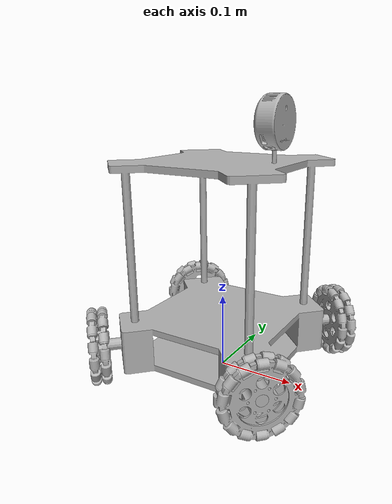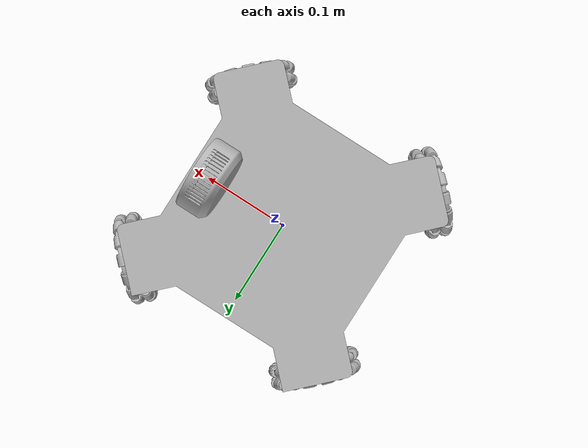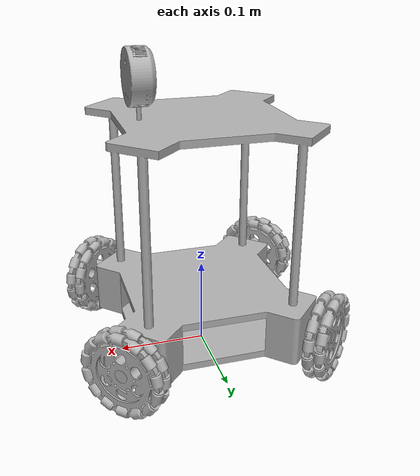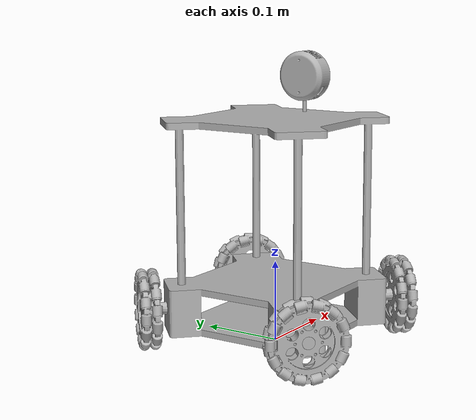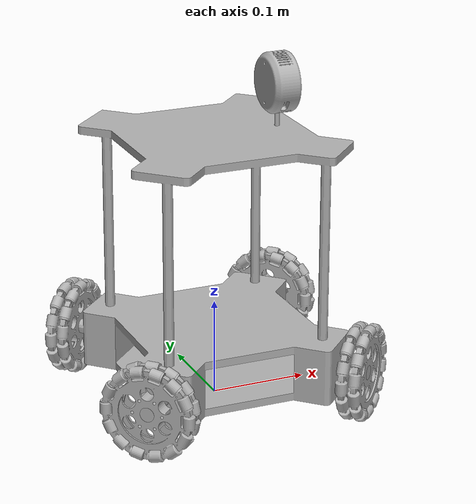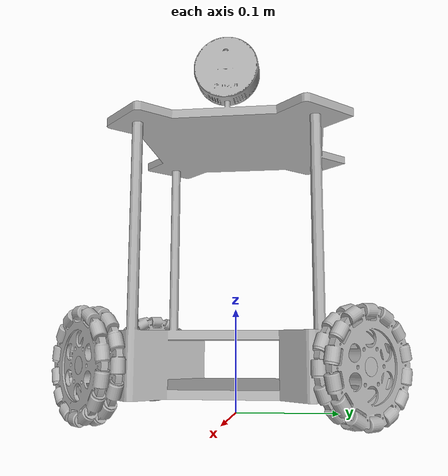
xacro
<?xml version="1.0" ?>
<robot name="rosbot2" xmlns:xacro="http://www.ros.org/wiki/xacro">

<xacro:include filename="$(find rosbot2_description)/urdf/materials.xacro" />
<xacro:include filename="$(find rosbot2_description)/urdf/rosbot2.trans" />
<xacro:include filename="$(find rosbot2_description)/urdf/rosbot2.gazebo" />
<xacro:include filename="$(find rosbot2_description)/urdf/gazebo_plugins.xacro" />
<xacro:include filename="$(find rosbot2_description)/urdf/lidar.xacro" />

<link name="base_link">
  <inertial>
    <origin xyz="4.279328882950714e-05 2.9051439187655854e-05 0.10428263442590485" rpy="0 0 0"/>
    <mass value="1.4518464481591138"/>
    <inertia ixx="0.020264" iyy="0.020266" izz="0.013558" ixy="-2.6e-05" iyz="-7e-06" ixz="-1.1e-05"/>
  </inertial>
  <visual>
    <origin xyz="0 0 0" rpy="0 0 0"/>
    <geometry>
      <mesh filename="file://$(find rosbot2_description)/meshes/base_link.stl" scale="0.001 0.001 0.001"/>
    </geometry>
    <material name="silver"/>
  </visual>
  <collision>
    <origin xyz="0 0 0" rpy="0 0 0"/>
    <geometry>
      <mesh filename="file://$(find rosbot2_description)/meshes/base_link.stl" scale="0.001 0.001 0.001"/>
    </geometry>
  </collision>
</link>

<link name="lw_wheel_1">
  <inertial>
    <origin xyz="-0.005332559043823348 -0.005301027638289532 2.5915426843534095e-05" rpy="0 0 0"/>
    <mass value="0.07153770183519433"/>
    <inertia ixx="7.9e-05" iyy="7.9e-05" izz="5.4e-05" ixy="2.4e-05" iyz="-0.0" ixz="0.0"/>
  </inertial>
  <visual>
    <origin xyz="-0.120208 -0.120208 -0.049" rpy="0 0 0"/>
    <geometry>
      <mesh filename="file://$(find rosbot2_description)/meshes/lw_wheel_1.stl" scale="0.001 0.001 0.001"/>
    </geometry>
    <material name="silver"/>
  </visual>
  <collision>
    <origin xyz="-0.120208 -0.120208 -0.049" rpy="0 0 0"/>
    <geometry>
      <mesh filename="file://$(find rosbot2_description)/meshes/lw_wheel_1.stl" scale="0.001 0.001 0.001"/>
    </geometry>
  </collision>
</link>

<link name="lb_wheel_1">
  <inertial>
    <origin xyz="0.0053411577210747685 -0.005309626315541993 2.5915426843658995e-05" rpy="0 0 0"/>
    <mass value="0.071537701835195"/>
    <inertia ixx="7.9e-05" iyy="7.9e-05" izz="5.4e-05" ixy="-2.4e-05" iyz="-0.0" ixz="-0.0"/>
  </inertial>
  <visual>
    <origin xyz="0.116673 -0.116673 -0.049" rpy="0 0 0"/>
    <geometry>
      <mesh filename="file://$(find rosbot2_description)/meshes/lb_wheel_1.stl" scale="0.001 0.001 0.001"/>
    </geometry>
    <material name="silver"/>
  </visual>
  <collision>
    <origin xyz="0.116673 -0.116673 -0.049" rpy="0 0 0"/>
    <geometry>
      <mesh filename="file://$(find rosbot2_description)/meshes/lb_wheel_1.stl" scale="0.001 0.001 0.001"/>
    </geometry>
  </collision>
</link>

<link name="rw_wheel_1">
  <inertial>
    <origin xyz="-0.005301561544221747 0.005333092949754453 2.591542684363818e-05" rpy="0 0 0"/>
    <mass value="0.07153770183519474"/>
    <inertia ixx="7.9e-05" iyy="7.9e-05" izz="5.4e-05" ixy="-2.4e-05" iyz="-0.0" ixz="-0.0"/>
  </inertial>
  <visual>
    <origin xyz="-0.116673 0.116673 -0.049" rpy="0 0 0"/>
    <geometry>
      <mesh filename="file://$(find rosbot2_description)/meshes/rw_wheel_1.stl" scale="0.001 0.001 0.001"/>
    </geometry>
    <material name="silver"/>
  </visual>
  <collision>
    <origin xyz="-0.116673 0.116673 -0.049" rpy="0 0 0"/>
    <geometry>
      <mesh filename="file://$(find rosbot2_description)/meshes/rw_wheel_1.stl" scale="0.001 0.001 0.001"/>
    </geometry>
  </collision>
</link>

<link name="rb_wheel_1">
  <inertial>
    <origin xyz="0.005309092409606309 0.0053406238151391255 2.5915426843027556e-05" rpy="0 0 0"/>
    <mass value="0.07153770183519464"/>
    <inertia ixx="7.9e-05" iyy="7.9e-05" izz="5.4e-05" ixy="2.4e-05" iyz="-0.0" ixz="0.0"/>
  </inertial>
  <visual>
    <origin xyz="0.120208 0.120208 -0.049" rpy="0 0 0"/>
    <geometry>
      <mesh filename="file://$(find rosbot2_description)/meshes/rb_wheel_1.stl" scale="0.001 0.001 0.001"/>
    </geometry>
    <material name="silver"/>
  </visual>
  <collision>
    <origin xyz="0.120208 0.120208 -0.049" rpy="0 0 0"/>
    <geometry>
      <mesh filename="file://$(find rosbot2_description)/meshes/rb_wheel_1.stl" scale="0.001 0.001 0.001"/>
    </geometry>
  </collision>
</link>

<link name="lidar_1">
  <inertial>
    <origin xyz="-0.003200717764024405 0.00024346130297415316 0.024536865472861047" rpy="0 0 0"/>
    <mass value="0.10080697429817698"/>
    <inertia ixx="4.6e-05" iyy="2.6e-05" izz="2.8e-05" ixy="-0.0" iyz="0.0" ixz="-0.0"/>
  </inertial>
  <visual>
    <origin xyz="-0.067672 -9.9e-05 -0.298" rpy="0 0 0"/>
    <geometry>
      <mesh filename="file://$(find rosbot2_description)/meshes/lidar_1.stl" scale="0.001 0.001 0.001"/>
    </geometry>
    <material name="silver"/>
  </visual>
  <collision>
    <origin xyz="-0.067672 -9.9e-05 -0.298" rpy="0 0 0"/>
    <geometry>
      <mesh filename="file://$(find rosbot2_description)/meshes/lidar_1.stl" scale="0.001 0.001 0.001"/>
    </geometry>
  </collision>
</link>

<joint name="rev_lw" type="continuous">
  <origin xyz="0.120208 0.120208 0.049" rpy="0 0 0"/>
  <parent link="base_link"/>
  <child link="lw_wheel_1"/>
  <axis xyz="0.707107 0.707107 0.0"/>
</joint>

<joint name="rev_lb" type="continuous">
  <origin xyz="-0.116673 0.116673 0.049" rpy="0 0 0"/>
  <parent link="base_link"/>
  <child link="lb_wheel_1"/>
  <axis xyz="-0.707107 0.707107 0.0"/>
</joint>

<joint name="rev_rw" type="continuous">
  <origin xyz="0.116673 -0.116673 0.049" rpy="0 0 0"/>
  <parent link="base_link"/>
  <child link="rw_wheel_1"/>
  <axis xyz="0.707107 -0.707107 0.0"/>
</joint>

<joint name="rev_rb" type="continuous">
  <origin xyz="-0.120208 -0.120208 0.049" rpy="0 0 0"/>
  <parent link="base_link"/>
  <child link="rb_wheel_1"/>
  <axis xyz="-0.707107 -0.707107 0.0"/>
</joint>

<joint name="lidar" type="fixed">
  <origin xyz="0.067672 9.9e-05 0.298" rpy="0 0 0"/>
  <parent link="base_link"/>
  <child link="lidar_1"/>
</joint>

</robot>

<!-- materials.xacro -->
<robot name="rosbot2" xmlns:xacro="http://www.ros.org/wiki/xacro" >

<material name="silver">
  <color rgba="0.700 0.700 0.700 1.000"/>
</material>

</robot>

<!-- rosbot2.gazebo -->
<robot name="rosbot2" xmlns:xacro="http://www.ros.org/wiki/xacro" >

<xacro:property name="body_color" value="Gazebo/Silver" />

<gazebo>
  <plugin name="control" filename="libgazebo_ros_control.so"/>
</gazebo>
<gazebo reference="base_link">
  <material>${body_color}</material>
  <mu1>0.2</mu1>
  <mu2>0.2</mu2>
  <self_collide>true</self_collide>
  <gravity>true</gravity>
</gazebo>

<gazebo reference="lw_wheel_1">
  <material>${body_color}</material>
  <mu1>0.2</mu1>
  <mu2>0.2</mu2>
  <self_collide>true</self_collide>
</gazebo>

<gazebo reference="lb_wheel_1">
  <material>${body_color}</material>
  <mu1>0.2</mu1>
  <mu2>0.2</mu2>
  <self_collide>true</self_collide>
</gazebo>

<gazebo reference="rw_wheel_1">
  <material>${body_color}</material>
  <mu1>0.2</mu1>
  <mu2>0.2</mu2>
  <self_collide>true</self_collide>
</gazebo>

<gazebo reference="rb_wheel_1">
  <material>${body_color}</material>
  <mu1>0.2</mu1>
  <mu2>0.2</mu2>
  <self_collide>true</self_collide>
</gazebo>

<gazebo reference="lidar_1">
  <material>${body_color}</material>
  <mu1>0.2</mu1>
  <mu2>0.2</mu2>
  <self_collide>true</self_collide>
</gazebo>

</robot>
